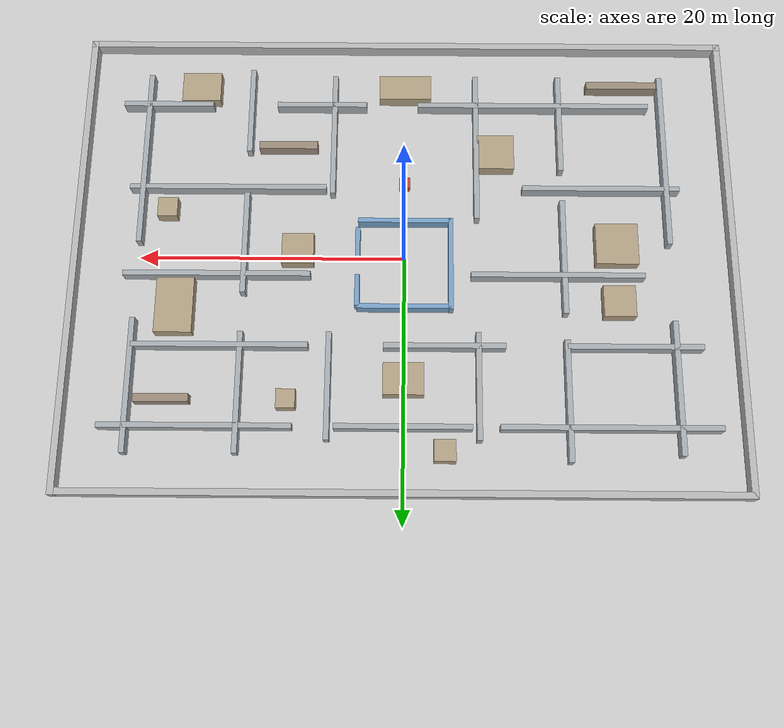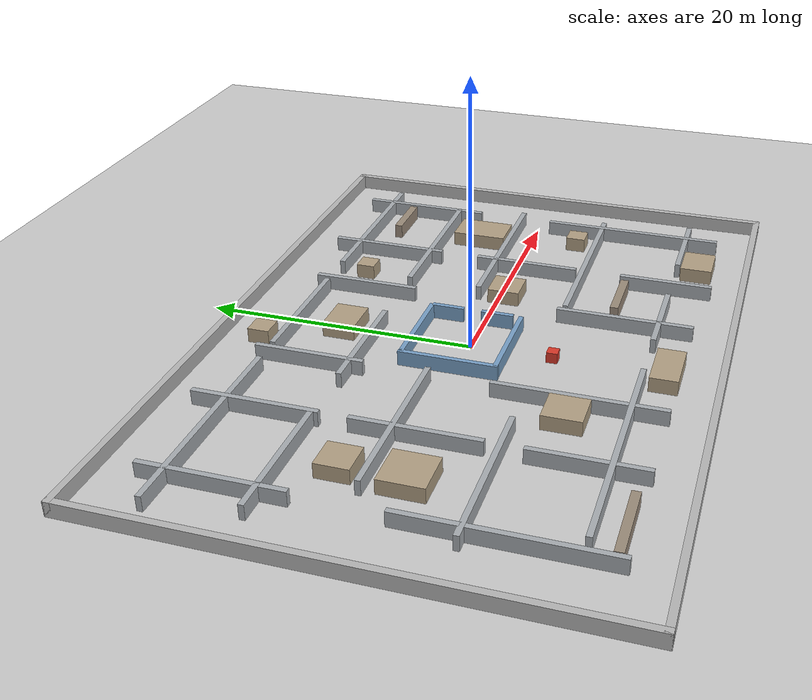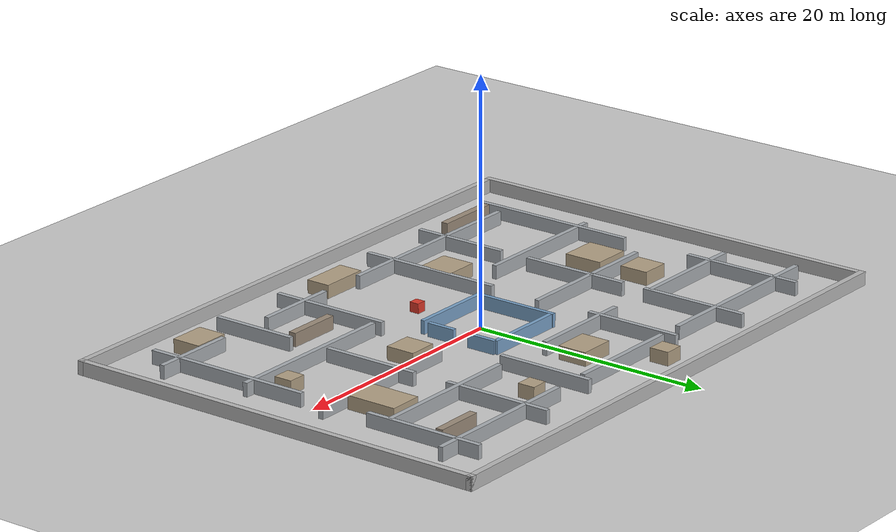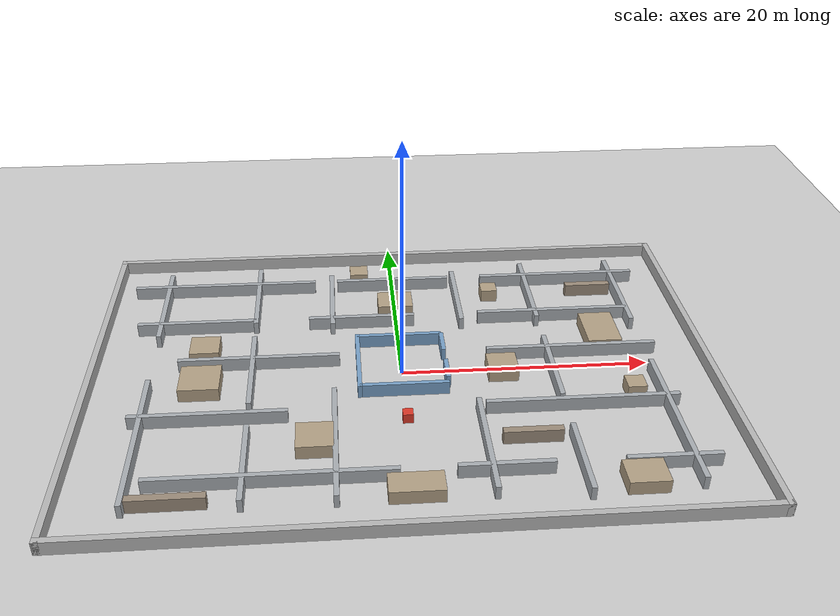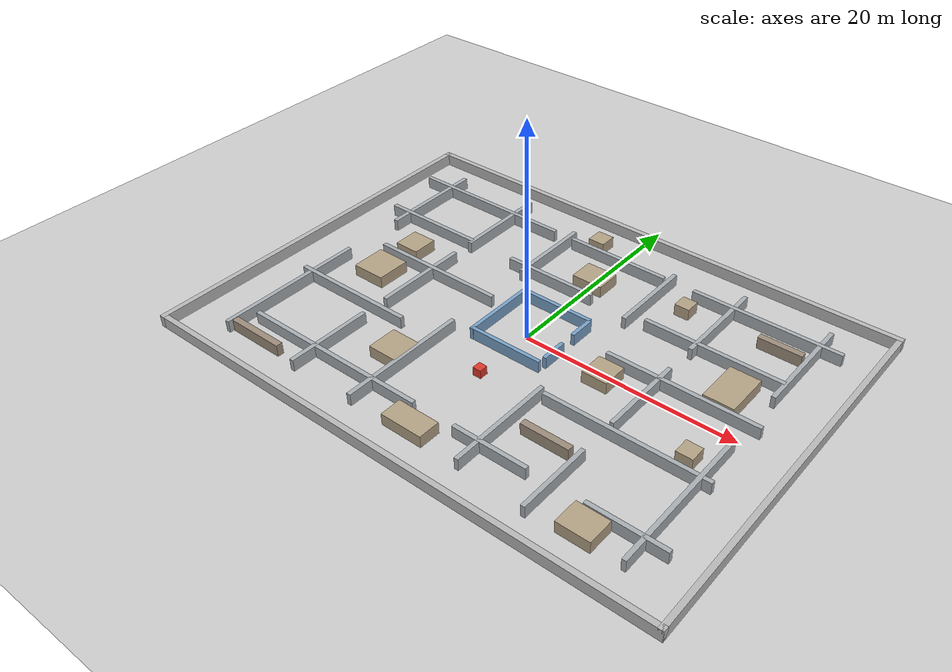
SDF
<?xml version="1.0" ?>
<sdf version="1.6">
  <world name="mega_challenge">
    <plugin name="gazebo_ros_state" filename="libgazebo_ros_state.so">
      <ros>
        <namespace>/gazebo</namespace>
      </ros>
      <update_rate>20.0</update_rate>
    </plugin>

    <include>
      <uri>model://sun</uri>
    </include>

    <include>
      <uri>model://ground_plane</uri>
    </include>

    <scene>
      <ambient>0.58 0.60 0.62 1</ambient>
      <background>0.85 0.89 0.94 1</background>
      <shadows>false</shadows>
    </scene>

    <physics type="ode">
      <max_step_size>0.001</max_step_size>
      <real_time_update_rate>1000</real_time_update_rate>
      <real_time_factor>1</real_time_factor>
    </physics>
    <model name="boundary_north">
      <static>true</static>
      <pose>0.000 17.750 0.550 0 0 0</pose>
      <link name="link">
        <collision name="collision">
          <geometry>
            <box><size>50.000 0.500 1.100</size></box>
          </geometry>
        </collision>
        <visual name="visual">
          <geometry>
            <box><size>50.000 0.500 1.100</size></box>
          </geometry>
          <material>
            <ambient>0.72 0.72 0.72 1</ambient>
            <diffuse>0.72 0.72 0.72 1</diffuse>
          </material>
        </visual>
      </link>
    </model>
    <model name="boundary_south">
      <static>true</static>
      <pose>0.000 -17.750 0.550 0 0 0</pose>
      <link name="link">
        <collision name="collision">
          <geometry>
            <box><size>50.000 0.500 1.100</size></box>
          </geometry>
        </collision>
        <visual name="visual">
          <geometry>
            <box><size>50.000 0.500 1.100</size></box>
          </geometry>
          <material>
            <ambient>0.72 0.72 0.72 1</ambient>
            <diffuse>0.72 0.72 0.72 1</diffuse>
          </material>
        </visual>
      </link>
    </model>
    <model name="boundary_west">
      <static>true</static>
      <pose>-24.750 0.000 0.550 0 0 0</pose>
      <link name="link">
        <collision name="collision">
          <geometry>
            <box><size>0.500 36.000 1.100</size></box>
          </geometry>
        </collision>
        <visual name="visual">
          <geometry>
            <box><size>0.500 36.000 1.100</size></box>
          </geometry>
          <material>
            <ambient>0.72 0.72 0.72 1</ambient>
            <diffuse>0.72 0.72 0.72 1</diffuse>
          </material>
        </visual>
      </link>
    </model>
    <model name="boundary_east">
      <static>true</static>
      <pose>24.750 0.000 0.550 0 0 0</pose>
      <link name="link">
        <collision name="collision">
          <geometry>
            <box><size>0.500 36.000 1.100</size></box>
          </geometry>
        </collision>
        <visual name="visual">
          <geometry>
            <box><size>0.500 36.000 1.100</size></box>
          </geometry>
          <material>
            <ambient>0.72 0.72 0.72 1</ambient>
            <diffuse>0.72 0.72 0.72 1</diffuse>
          </material>
        </visual>
      </link>
    </model>
    <model name="h_top_left">
      <static>true</static>
      <pose>-15.000 13.000 0.550 0 0 0</pose>
      <link name="link">
        <collision name="collision">
          <geometry>
            <box><size>16.000 0.400 1.100</size></box>
          </geometry>
        </collision>
        <visual name="visual">
          <geometry>
            <box><size>16.000 0.400 1.100</size></box>
          </geometry>
          <material>
            <ambient>0.66 0.68 0.70 1</ambient>
            <diffuse>0.66 0.68 0.70 1</diffuse>
          </material>
        </visual>
      </link>
    </model>
    <model name="h_top_mid">
      <static>true</static>
      <pose>0.000 13.000 0.550 0 0 0</pose>
      <link name="link">
        <collision name="collision">
          <geometry>
            <box><size>10.000 0.400 1.100</size></box>
          </geometry>
        </collision>
        <visual name="visual">
          <geometry>
            <box><size>10.000 0.400 1.100</size></box>
          </geometry>
          <material>
            <ambient>0.66 0.68 0.70 1</ambient>
            <diffuse>0.66 0.68 0.70 1</diffuse>
          </material>
        </visual>
      </link>
    </model>
    <model name="h_top_right">
      <static>true</static>
      <pose>15.000 13.000 0.550 0 0 0</pose>
      <link name="link">
        <collision name="collision">
          <geometry>
            <box><size>14.000 0.400 1.100</size></box>
          </geometry>
        </collision>
        <visual name="visual">
          <geometry>
            <box><size>14.000 0.400 1.100</size></box>
          </geometry>
          <material>
            <ambient>0.66 0.68 0.70 1</ambient>
            <diffuse>0.66 0.68 0.70 1</diffuse>
          </material>
        </visual>
      </link>
    </model>
    <model name="h_upper_left">
      <static>true</static>
      <pose>-17.000 7.000 0.550 0 0 0</pose>
      <link name="link">
        <collision name="collision">
          <geometry>
            <box><size>10.000 0.400 1.100</size></box>
          </geometry>
        </collision>
        <visual name="visual">
          <geometry>
            <box><size>10.000 0.400 1.100</size></box>
          </geometry>
          <material>
            <ambient>0.66 0.68 0.70 1</ambient>
            <diffuse>0.66 0.68 0.70 1</diffuse>
          </material>
        </visual>
      </link>
    </model>
    <model name="h_upper_mid">
      <static>true</static>
      <pose>-3.000 7.000 0.550 0 0 0</pose>
      <link name="link">
        <collision name="collision">
          <geometry>
            <box><size>9.000 0.400 1.100</size></box>
          </geometry>
        </collision>
        <visual name="visual">
          <geometry>
            <box><size>9.000 0.400 1.100</size></box>
          </geometry>
          <material>
            <ambient>0.66 0.68 0.70 1</ambient>
            <diffuse>0.66 0.68 0.70 1</diffuse>
          </material>
        </visual>
      </link>
    </model>
    <model name="h_upper_right">
      <static>true</static>
      <pose>13.500 7.000 0.550 0 0 0</pose>
      <link name="link">
        <collision name="collision">
          <geometry>
            <box><size>13.000 0.400 1.100</size></box>
          </geometry>
        </collision>
        <visual name="visual">
          <geometry>
            <box><size>13.000 0.400 1.100</size></box>
          </geometry>
          <material>
            <ambient>0.66 0.68 0.70 1</ambient>
            <diffuse>0.66 0.68 0.70 1</diffuse>
          </material>
        </visual>
      </link>
    </model>
    <model name="h_center_left">
      <static>true</static>
      <pose>-11.500 1.500 0.550 0 0 0</pose>
      <link name="link">
        <collision name="collision">
          <geometry>
            <box><size>13.000 0.400 1.100</size></box>
          </geometry>
        </collision>
        <visual name="visual">
          <geometry>
            <box><size>13.000 0.400 1.100</size></box>
          </geometry>
          <material>
            <ambient>0.66 0.68 0.70 1</ambient>
            <diffuse>0.66 0.68 0.70 1</diffuse>
          </material>
        </visual>
      </link>
    </model>
    <model name="h_center_right">
      <static>true</static>
      <pose>14.000 1.500 0.550 0 0 0</pose>
      <link name="link">
        <collision name="collision">
          <geometry>
            <box><size>14.000 0.400 1.100</size></box>
          </geometry>
        </collision>
        <visual name="visual">
          <geometry>
            <box><size>14.000 0.400 1.100</size></box>
          </geometry>
          <material>
            <ambient>0.66 0.68 0.70 1</ambient>
            <diffuse>0.66 0.68 0.70 1</diffuse>
          </material>
        </visual>
      </link>
    </model>
    <model name="h_lower_left">
      <static>true</static>
      <pose>-15.000 -5.500 0.550 0 0 0</pose>
      <link name="link">
        <collision name="collision">
          <geometry>
            <box><size>12.000 0.400 1.100</size></box>
          </geometry>
        </collision>
        <visual name="visual">
          <geometry>
            <box><size>12.000 0.400 1.100</size></box>
          </geometry>
          <material>
            <ambient>0.66 0.68 0.70 1</ambient>
            <diffuse>0.66 0.68 0.70 1</diffuse>
          </material>
        </visual>
      </link>
    </model>
    <model name="h_lower_right">
      <static>true</static>
      <pose>13.500 -5.500 0.550 0 0 0</pose>
      <link name="link">
        <collision name="collision">
          <geometry>
            <box><size>15.000 0.400 1.100</size></box>
          </geometry>
        </collision>
        <visual name="visual">
          <geometry>
            <box><size>15.000 0.400 1.100</size></box>
          </geometry>
          <material>
            <ambient>0.66 0.68 0.70 1</ambient>
            <diffuse>0.66 0.68 0.70 1</diffuse>
          </material>
        </visual>
      </link>
    </model>
    <model name="h_bottom_left">
      <static>true</static>
      <pose>-10.000 -12.500 0.550 0 0 0</pose>
      <link name="link">
        <collision name="collision">
          <geometry>
            <box><size>18.000 0.400 1.100</size></box>
          </geometry>
        </collision>
        <visual name="visual">
          <geometry>
            <box><size>18.000 0.400 1.100</size></box>
          </geometry>
          <material>
            <ambient>0.66 0.68 0.70 1</ambient>
            <diffuse>0.66 0.68 0.70 1</diffuse>
          </material>
        </visual>
      </link>
    </model>
    <model name="h_bottom_mid">
      <static>true</static>
      <pose>6.500 -12.500 0.550 0 0 0</pose>
      <link name="link">
        <collision name="collision">
          <geometry>
            <box><size>7.000 0.400 1.100</size></box>
          </geometry>
        </collision>
        <visual name="visual">
          <geometry>
            <box><size>7.000 0.400 1.100</size></box>
          </geometry>
          <material>
            <ambient>0.66 0.68 0.70 1</ambient>
            <diffuse>0.66 0.68 0.70 1</diffuse>
          </material>
        </visual>
      </link>
    </model>
    <model name="h_bottom_right">
      <static>true</static>
      <pose>18.500 -12.500 0.550 0 0 0</pose>
      <link name="link">
        <collision name="collision">
          <geometry>
            <box><size>7.000 0.400 1.100</size></box>
          </geometry>
        </collision>
        <visual name="visual">
          <geometry>
            <box><size>7.000 0.400 1.100</size></box>
          </geometry>
          <material>
            <ambient>0.66 0.68 0.70 1</ambient>
            <diffuse>0.66 0.68 0.70 1</diffuse>
          </material>
        </visual>
      </link>
    </model>
    <model name="v_far_left_top">
      <static>true</static>
      <pose>-20.000 10.000 0.550 0 0 0</pose>
      <link name="link">
        <collision name="collision">
          <geometry>
            <box><size>0.400 10.000 1.100</size></box>
          </geometry>
        </collision>
        <visual name="visual">
          <geometry>
            <box><size>0.400 10.000 1.100</size></box>
          </geometry>
          <material>
            <ambient>0.66 0.68 0.70 1</ambient>
            <diffuse>0.66 0.68 0.70 1</diffuse>
          </material>
        </visual>
      </link>
    </model>
    <model name="v_far_left_bottom">
      <static>true</static>
      <pose>-20.000 -8.000 0.550 0 0 0</pose>
      <link name="link">
        <collision name="collision">
          <geometry>
            <box><size>0.400 14.000 1.100</size></box>
          </geometry>
        </collision>
        <visual name="visual">
          <geometry>
            <box><size>0.400 14.000 1.100</size></box>
          </geometry>
          <material>
            <ambient>0.66 0.68 0.70 1</ambient>
            <diffuse>0.66 0.68 0.70 1</diffuse>
          </material>
        </visual>
      </link>
    </model>
    <model name="v_left_top">
      <static>true</static>
      <pose>-12.000 11.000 0.550 0 0 0</pose>
      <link name="link">
        <collision name="collision">
          <geometry>
            <box><size>0.400 9.000 1.100</size></box>
          </geometry>
        </collision>
        <visual name="visual">
          <geometry>
            <box><size>0.400 9.000 1.100</size></box>
          </geometry>
          <material>
            <ambient>0.66 0.68 0.70 1</ambient>
            <diffuse>0.66 0.68 0.70 1</diffuse>
          </material>
        </visual>
      </link>
    </model>
    <model name="v_left_mid">
      <static>true</static>
      <pose>-12.000 0.000 0.550 0 0 0</pose>
      <link name="link">
        <collision name="collision">
          <geometry>
            <box><size>0.400 9.000 1.100</size></box>
          </geometry>
        </collision>
        <visual name="visual">
          <geometry>
            <box><size>0.400 9.000 1.100</size></box>
          </geometry>
          <material>
            <ambient>0.66 0.68 0.70 1</ambient>
            <diffuse>0.66 0.68 0.70 1</diffuse>
          </material>
        </visual>
      </link>
    </model>
    <model name="v_left_bottom">
      <static>true</static>
      <pose>-12.000 -11.000 0.550 0 0 0</pose>
      <link name="link">
        <collision name="collision">
          <geometry>
            <box><size>0.400 8.000 1.100</size></box>
          </geometry>
        </collision>
        <visual name="visual">
          <geometry>
            <box><size>0.400 8.000 1.100</size></box>
          </geometry>
          <material>
            <ambient>0.66 0.68 0.70 1</ambient>
            <diffuse>0.66 0.68 0.70 1</diffuse>
          </material>
        </visual>
      </link>
    </model>
    <model name="v_inner_left_top">
      <static>true</static>
      <pose>-5.500 10.000 0.550 0 0 0</pose>
      <link name="link">
        <collision name="collision">
          <geometry>
            <box><size>0.400 8.000 1.100</size></box>
          </geometry>
        </collision>
        <visual name="visual">
          <geometry>
            <box><size>0.400 8.000 1.100</size></box>
          </geometry>
          <material>
            <ambient>0.66 0.68 0.70 1</ambient>
            <diffuse>0.66 0.68 0.70 1</diffuse>
          </material>
        </visual>
      </link>
    </model>
    <model name="v_inner_left_bottom">
      <static>true</static>
      <pose>-5.500 -9.000 0.550 0 0 0</pose>
      <link name="link">
        <collision name="collision">
          <geometry>
            <box><size>0.400 12.000 1.100</size></box>
          </geometry>
        </collision>
        <visual name="visual">
          <geometry>
            <box><size>0.400 12.000 1.100</size></box>
          </geometry>
          <material>
            <ambient>0.66 0.68 0.70 1</ambient>
            <diffuse>0.66 0.68 0.70 1</diffuse>
          </material>
        </visual>
      </link>
    </model>
    <model name="v_inner_right_top">
      <static>true</static>
      <pose>5.500 10.000 0.550 0 0 0</pose>
      <link name="link">
        <collision name="collision">
          <geometry>
            <box><size>0.400 8.000 1.100</size></box>
          </geometry>
        </collision>
        <visual name="visual">
          <geometry>
            <box><size>0.400 8.000 1.100</size></box>
          </geometry>
          <material>
            <ambient>0.66 0.68 0.70 1</ambient>
            <diffuse>0.66 0.68 0.70 1</diffuse>
          </material>
        </visual>
      </link>
    </model>
    <model name="v_inner_right_bottom">
      <static>true</static>
      <pose>5.500 -10.000 0.550 0 0 0</pose>
      <link name="link">
        <collision name="collision">
          <geometry>
            <box><size>0.400 10.000 1.100</size></box>
          </geometry>
        </collision>
        <visual name="visual">
          <geometry>
            <box><size>0.400 10.000 1.100</size></box>
          </geometry>
          <material>
            <ambient>0.66 0.68 0.70 1</ambient>
            <diffuse>0.66 0.68 0.70 1</diffuse>
          </material>
        </visual>
      </link>
    </model>
    <model name="v_right_top">
      <static>true</static>
      <pose>12.000 10.500 0.550 0 0 0</pose>
      <link name="link">
        <collision name="collision">
          <geometry>
            <box><size>0.400 9.000 1.100</size></box>
          </geometry>
        </collision>
        <visual name="visual">
          <geometry>
            <box><size>0.400 9.000 1.100</size></box>
          </geometry>
          <material>
            <ambient>0.66 0.68 0.70 1</ambient>
            <diffuse>0.66 0.68 0.70 1</diffuse>
          </material>
        </visual>
      </link>
    </model>
    <model name="v_right_mid">
      <static>true</static>
      <pose>12.000 -1.000 0.550 0 0 0</pose>
      <link name="link">
        <collision name="collision">
          <geometry>
            <box><size>0.400 8.000 1.100</size></box>
          </geometry>
        </collision>
        <visual name="visual">
          <geometry>
            <box><size>0.400 8.000 1.100</size></box>
          </geometry>
          <material>
            <ambient>0.66 0.68 0.70 1</ambient>
            <diffuse>0.66 0.68 0.70 1</diffuse>
          </material>
        </visual>
      </link>
    </model>
    <model name="v_right_bottom">
      <static>true</static>
      <pose>12.000 -12.000 0.550 0 0 0</pose>
      <link name="link">
        <collision name="collision">
          <geometry>
            <box><size>0.400 7.000 1.100</size></box>
          </geometry>
        </collision>
        <visual name="visual">
          <geometry>
            <box><size>0.400 7.000 1.100</size></box>
          </geometry>
          <material>
            <ambient>0.66 0.68 0.70 1</ambient>
            <diffuse>0.66 0.68 0.70 1</diffuse>
          </material>
        </visual>
      </link>
    </model>
    <model name="v_far_right_top">
      <static>true</static>
      <pose>20.000 10.000 0.550 0 0 0</pose>
      <link name="link">
        <collision name="collision">
          <geometry>
            <box><size>0.400 10.000 1.100</size></box>
          </geometry>
        </collision>
        <visual name="visual">
          <geometry>
            <box><size>0.400 10.000 1.100</size></box>
          </geometry>
          <material>
            <ambient>0.66 0.68 0.70 1</ambient>
            <diffuse>0.66 0.68 0.70 1</diffuse>
          </material>
        </visual>
      </link>
    </model>
    <model name="v_far_right_bottom">
      <static>true</static>
      <pose>20.000 -8.000 0.550 0 0 0</pose>
      <link name="link">
        <collision name="collision">
          <geometry>
            <box><size>0.400 14.000 1.100</size></box>
          </geometry>
        </collision>
        <visual name="visual">
          <geometry>
            <box><size>0.400 14.000 1.100</size></box>
          </geometry>
          <material>
            <ambient>0.66 0.68 0.70 1</ambient>
            <diffuse>0.66 0.68 0.70 1</diffuse>
          </material>
        </visual>
      </link>
    </model>
    <model name="ring_top">
      <static>true</static>
      <pose>0.000 4.000 0.550 0 0 0</pose>
      <link name="link">
        <collision name="collision">
          <geometry>
            <box><size>7.000 0.350 1.100</size></box>
          </geometry>
        </collision>
        <visual name="visual">
          <geometry>
            <box><size>7.000 0.350 1.100</size></box>
          </geometry>
          <material>
            <ambient>0.47 0.63 0.78 1</ambient>
            <diffuse>0.47 0.63 0.78 1</diffuse>
          </material>
        </visual>
      </link>
    </model>
    <model name="ring_bottom">
      <static>true</static>
      <pose>0.000 -2.800 0.550 0 0 0</pose>
      <link name="link">
        <collision name="collision">
          <geometry>
            <box><size>7.000 0.350 1.100</size></box>
          </geometry>
        </collision>
        <visual name="visual">
          <geometry>
            <box><size>7.000 0.350 1.100</size></box>
          </geometry>
          <material>
            <ambient>0.47 0.63 0.78 1</ambient>
            <diffuse>0.47 0.63 0.78 1</diffuse>
          </material>
        </visual>
      </link>
    </model>
    <model name="ring_left">
      <static>true</static>
      <pose>-3.500 0.600 0.550 0 0 0</pose>
      <link name="link">
        <collision name="collision">
          <geometry>
            <box><size>0.350 7.200 1.100</size></box>
          </geometry>
        </collision>
        <visual name="visual">
          <geometry>
            <box><size>0.350 7.200 1.100</size></box>
          </geometry>
          <material>
            <ambient>0.47 0.63 0.78 1</ambient>
            <diffuse>0.47 0.63 0.78 1</diffuse>
          </material>
        </visual>
      </link>
    </model>
    <model name="ring_right_top">
      <static>true</static>
      <pose>3.500 2.750 0.550 0 0 0</pose>
      <link name="link">
        <collision name="collision">
          <geometry>
            <box><size>0.350 2.400 1.100</size></box>
          </geometry>
        </collision>
        <visual name="visual">
          <geometry>
            <box><size>0.350 2.400 1.100</size></box>
          </geometry>
          <material>
            <ambient>0.47 0.63 0.78 1</ambient>
            <diffuse>0.47 0.63 0.78 1</diffuse>
          </material>
        </visual>
      </link>
    </model>
    <model name="ring_right_bottom">
      <static>true</static>
      <pose>3.500 -1.000 0.550 0 0 0</pose>
      <link name="link">
        <collision name="collision">
          <geometry>
            <box><size>0.350 2.400 1.100</size></box>
          </geometry>
        </collision>
        <visual name="visual">
          <geometry>
            <box><size>0.350 2.400 1.100</size></box>
          </geometry>
          <material>
            <ambient>0.47 0.63 0.78 1</ambient>
            <diffuse>0.47 0.63 0.78 1</diffuse>
          </material>
        </visual>
      </link>
    </model>
    <model name="block_nw_core">
      <static>true</static>
      <pose>-16.000 -1.000 0.550 0 0 0</pose>
      <link name="link">
        <collision name="collision">
          <geometry>
            <box><size>3.200 3.200 1.100</size></box>
          </geometry>
        </collision>
        <visual name="visual">
          <geometry>
            <box><size>3.200 3.200 1.100</size></box>
          </geometry>
          <material>
            <ambient>0.70 0.63 0.52 1</ambient>
            <diffuse>0.70 0.63 0.52 1</diffuse>
          </material>
        </visual>
      </link>
    </model>
    <model name="block_nw_upper">
      <static>true</static>
      <pose>-16.000 3.500 0.550 0 0 0</pose>
      <link name="link">
        <collision name="collision">
          <geometry>
            <box><size>2.400 2.400 1.100</size></box>
          </geometry>
        </collision>
        <visual name="visual">
          <geometry>
            <box><size>2.400 2.400 1.100</size></box>
          </geometry>
          <material>
            <ambient>0.70 0.63 0.52 1</ambient>
            <diffuse>0.70 0.63 0.52 1</diffuse>
          </material>
        </visual>
      </link>
    </model>
    <model name="block_mid_north">
      <static>true</static>
      <pose>0.000 9.500 0.550 0 0 0</pose>
      <link name="link">
        <collision name="collision">
          <geometry>
            <box><size>3.000 2.400 1.100</size></box>
          </geometry>
        </collision>
        <visual name="visual">
          <geometry>
            <box><size>3.000 2.400 1.100</size></box>
          </geometry>
          <material>
            <ambient>0.70 0.63 0.52 1</ambient>
            <diffuse>0.70 0.63 0.52 1</diffuse>
          </material>
        </visual>
      </link>
    </model>
    <model name="block_right_north">
      <static>true</static>
      <pose>17.000 4.000 0.550 0 0 0</pose>
      <link name="link">
        <collision name="collision">
          <geometry>
            <box><size>2.800 4.200 1.100</size></box>
          </geometry>
        </collision>
        <visual name="visual">
          <geometry>
            <box><size>2.800 4.200 1.100</size></box>
          </geometry>
          <material>
            <ambient>0.70 0.63 0.52 1</ambient>
            <diffuse>0.70 0.63 0.52 1</diffuse>
          </material>
        </visual>
      </link>
    </model>
    <model name="block_deadend_mid">
      <static>true</static>
      <pose>8.000 -0.500 0.550 0 0 0</pose>
      <link name="link">
        <collision name="collision">
          <geometry>
            <box><size>2.400 2.400 1.100</size></box>
          </geometry>
        </collision>
        <visual name="visual">
          <geometry>
            <box><size>2.400 2.400 1.100</size></box>
          </geometry>
          <material>
            <ambient>0.70 0.63 0.52 1</ambient>
            <diffuse>0.70 0.63 0.52 1</diffuse>
          </material>
        </visual>
      </link>
    </model>
    <model name="block_south_left">
      <static>true</static>
      <pose>-7.000 -8.500 0.550 0 0 0</pose>
      <link name="link">
        <collision name="collision">
          <geometry>
            <box><size>2.800 2.800 1.100</size></box>
          </geometry>
        </collision>
        <visual name="visual">
          <geometry>
            <box><size>2.800 2.800 1.100</size></box>
          </geometry>
          <material>
            <ambient>0.70 0.63 0.52 1</ambient>
            <diffuse>0.70 0.63 0.52 1</diffuse>
          </material>
        </visual>
      </link>
    </model>
    <model name="block_south_mid">
      <static>true</static>
      <pose>0.000 -14.000 0.550 0 0 0</pose>
      <link name="link">
        <collision name="collision">
          <geometry>
            <box><size>4.000 2.000 1.100</size></box>
          </geometry>
        </collision>
        <visual name="visual">
          <geometry>
            <box><size>4.000 2.000 1.100</size></box>
          </geometry>
          <material>
            <ambient>0.70 0.63 0.52 1</ambient>
            <diffuse>0.70 0.63 0.52 1</diffuse>
          </material>
        </visual>
      </link>
    </model>
    <model name="block_south_right">
      <static>true</static>
      <pose>16.000 -14.000 0.550 0 0 0</pose>
      <link name="link">
        <collision name="collision">
          <geometry>
            <box><size>3.000 2.400 1.100</size></box>
          </geometry>
        </collision>
        <visual name="visual">
          <geometry>
            <box><size>3.000 2.400 1.100</size></box>
          </geometry>
          <material>
            <ambient>0.70 0.63 0.52 1</ambient>
            <diffuse>0.70 0.63 0.52 1</diffuse>
          </material>
        </visual>
      </link>
    </model>
    <model name="shelf_west">
      <static>true</static>
      <pose>-17.000 -14.300 0.550 0 0 0</pose>
      <link name="link">
        <collision name="collision">
          <geometry>
            <box><size>5.500 0.600 1.100</size></box>
          </geometry>
        </collision>
        <visual name="visual">
          <geometry>
            <box><size>5.500 0.600 1.100</size></box>
          </geometry>
          <material>
            <ambient>0.61 0.55 0.48 1</ambient>
            <diffuse>0.61 0.55 0.48 1</diffuse>
          </material>
        </visual>
      </link>
    </model>
    <model name="shelf_mid">
      <static>true</static>
      <pose>9.000 -9.000 0.550 0 0 0</pose>
      <link name="link">
        <collision name="collision">
          <geometry>
            <box><size>4.500 0.600 1.100</size></box>
          </geometry>
        </collision>
        <visual name="visual">
          <geometry>
            <box><size>4.500 0.600 1.100</size></box>
          </geometry>
          <material>
            <ambient>0.61 0.55 0.48 1</ambient>
            <diffuse>0.61 0.55 0.48 1</diffuse>
          </material>
        </visual>
      </link>
    </model>
    <model name="shelf_east">
      <static>true</static>
      <pose>17.500 11.000 0.550 0 0 0</pose>
      <link name="link">
        <collision name="collision">
          <geometry>
            <box><size>4.000 0.600 1.100</size></box>
          </geometry>
        </collision>
        <visual name="visual">
          <geometry>
            <box><size>4.000 0.600 1.100</size></box>
          </geometry>
          <material>
            <ambient>0.61 0.55 0.48 1</ambient>
            <diffuse>0.61 0.55 0.48 1</diffuse>
          </material>
        </visual>
      </link>
    </model>
    <model name="pillar_north_west">
      <static>true</static>
      <pose>-3.000 14.700 0.550 0 0 0</pose>
      <link name="link">
        <collision name="collision">
          <geometry>
            <box><size>1.600 1.600 1.100</size></box>
          </geometry>
        </collision>
        <visual name="visual">
          <geometry>
            <box><size>1.600 1.600 1.100</size></box>
          </geometry>
          <material>
            <ambient>0.70 0.63 0.52 1</ambient>
            <diffuse>0.70 0.63 0.52 1</diffuse>
          </material>
        </visual>
      </link>
    </model>
    <model name="pillar_north_east">
      <static>true</static>
      <pose>8.500 11.000 0.550 0 0 0</pose>
      <link name="link">
        <collision name="collision">
          <geometry>
            <box><size>1.400 1.400 1.100</size></box>
          </geometry>
        </collision>
        <visual name="visual">
          <geometry>
            <box><size>1.400 1.400 1.100</size></box>
          </geometry>
          <material>
            <ambient>0.70 0.63 0.52 1</ambient>
            <diffuse>0.70 0.63 0.52 1</diffuse>
          </material>
        </visual>
      </link>
    </model>
    <model name="pillar_south_east">
      <static>true</static>
      <pose>18.000 -3.800 0.550 0 0 0</pose>
      <link name="link">
        <collision name="collision">
          <geometry>
            <box><size>1.500 1.500 1.100</size></box>
          </geometry>
        </collision>
        <visual name="visual">
          <geometry>
            <box><size>1.500 1.500 1.100</size></box>
          </geometry>
          <material>
            <ambient>0.70 0.63 0.52 1</ambient>
            <diffuse>0.70 0.63 0.52 1</diffuse>
          </material>
        </visual>
      </link>
    </model>
    <model name="dynamic_box_1">
      <static>false</static>
      <pose>0.000 -6.000 0.400 0 0 0</pose>
      <link name="link">
        <collision name="collision">
          <geometry>
            <box><size>0.800 0.800 0.800</size></box>
          </geometry>
        </collision>
        <visual name="visual">
          <geometry>
            <box><size>0.800 0.800 0.800</size></box>
          </geometry>
          <material>
            <ambient>0.86 0.22 0.16 1</ambient>
            <diffuse>0.86 0.22 0.16 1</diffuse>
          </material>
        </visual>
      </link>
    </model>
  </world>
</sdf>
